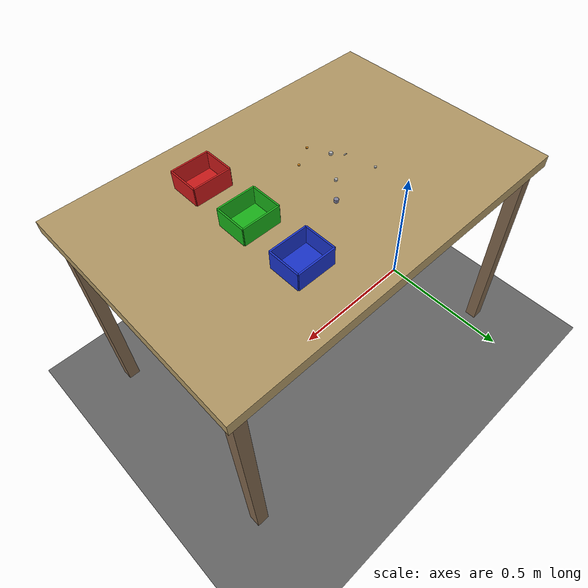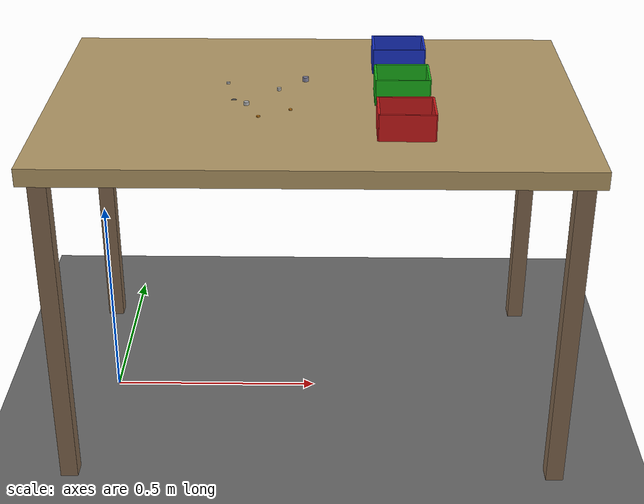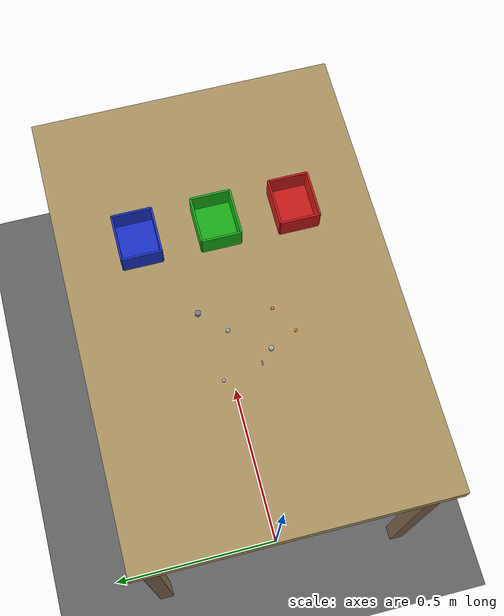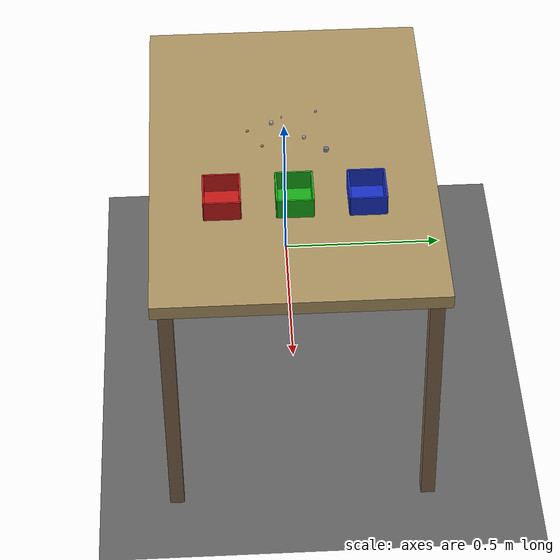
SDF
<?xml version="1.0"?>
<sdf version="1.7">
  <world name="vla_world">

    <!-- ── Physics ────────────────────────────────────────────────────── -->
    <physics name="default_physics" default="0" type="ode">
      <max_step_size>0.001</max_step_size>
      <real_time_factor>1</real_time_factor>
      <real_time_update_rate>1000</real_time_update_rate>
    </physics>

    <!-- ── Plugins ─────────────────────────────────────────────────────── -->
    <plugin filename="libgazebo_ros_factory.so" name="gazebo_ros_factory"/>

    <!-- ── Lighting ────────────────────────────────────────────────────── -->
    <light name="sun" type="directional">
      <cast_shadows>1</cast_shadows>
      <pose>0 0 10 0 -0 0</pose>
      <diffuse>0.8 0.8 0.8 1</diffuse>
      <specular>0.2 0.2 0.2 1</specular>
      <direction>-0.5 0.1 -0.9</direction>
    </light>

    <light name="overhead" type="point">
      <pose>0.4 0 1.5 0 0 0</pose>
      <diffuse>0.6 0.6 0.6 1</diffuse>
      <specular>0.1 0.1 0.1 1</specular>
      <attenuation>
        <range>5</range>
        <linear>0.2</linear>
      </attenuation>
    </light>

    <!-- ── Ground plane ────────────────────────────────────────────────── -->
    <model name="ground_plane">
      <static>true</static>
      <link name="link">
        <collision name="collision">
          <geometry><plane><normal>0 0 1</normal></plane></geometry>
        </collision>
        <visual name="visual">
          <geometry><plane><normal>0 0 1</normal><size>20 20</size></plane></geometry>
          <material>
            <ambient>0.4 0.4 0.4 1</ambient>
            <diffuse>0.4 0.4 0.4 1</diffuse>
          </material>
        </visual>
      </link>
    </model>

    <!-- ── Workbench ────────────────────────────────────────────────────── -->
    <!-- Table surface at z=0.77 (Franka Panda mounted on top) -->
    <model name="workbench">
      <static>true</static>
      <pose>0.5 0 0 0 0 0</pose>
      <link name="table_top">
        <pose>0 0 0.77 0 0 0</pose>
        <collision name="collision">
          <geometry>
            <box><size>1.2 0.8 0.04</size></box>
          </geometry>
        </collision>
        <visual name="visual">
          <geometry>
            <box><size>1.2 0.8 0.04</size></box>
          </geometry>
          <material>
            <ambient>0.7 0.6 0.4 1</ambient>
            <diffuse>0.7 0.6 0.4 1</diffuse>
          </material>
        </visual>
      </link>
      <!-- Table legs (4×) -->
      <link name="leg_fl"><pose>-0.56 -0.36 0.385 0 0 0</pose>
        <collision name="c"><geometry><box><size>0.04 0.04 0.77</size></box></geometry></collision>
        <visual name="v"><geometry><box><size>0.04 0.04 0.77</size></box></geometry>
          <material><ambient>0.5 0.4 0.3 1</ambient><diffuse>0.5 0.4 0.3 1</diffuse></material>
        </visual>
      </link>
      <link name="leg_fr"><pose>-0.56  0.36 0.385 0 0 0</pose>
        <collision name="c"><geometry><box><size>0.04 0.04 0.77</size></box></geometry></collision>
        <visual name="v"><geometry><box><size>0.04 0.04 0.77</size></box></geometry>
          <material><ambient>0.5 0.4 0.3 1</ambient><diffuse>0.5 0.4 0.3 1</diffuse></material>
        </visual>
      </link>
      <link name="leg_bl"><pose> 0.56 -0.36 0.385 0 0 0</pose>
        <collision name="c"><geometry><box><size>0.04 0.04 0.77</size></box></geometry></collision>
        <visual name="v"><geometry><box><size>0.04 0.04 0.77</size></box></geometry>
          <material><ambient>0.5 0.4 0.3 1</ambient><diffuse>0.5 0.4 0.3 1</diffuse></material>
        </visual>
      </link>
      <link name="leg_br"><pose> 0.56  0.36 0.385 0 0 0</pose>
        <collision name="c"><geometry><box><size>0.04 0.04 0.77</size></box></geometry></collision>
        <visual name="v"><geometry><box><size>0.04 0.04 0.77</size></box></geometry>
          <material><ambient>0.5 0.4 0.3 1</ambient><diffuse>0.5 0.4 0.3 1</diffuse></material>
        </visual>
      </link>
    </model>

    <!-- ── Sorting Bin A (red) ─────────────────────────────────────────── -->
    <model name="bin_A">
      <static>true</static>
      <pose>0.70 -0.20 0.79 0 0 0</pose>
      <link name="base">
        <collision name="c"><geometry><box><size>0.12 0.10 0.005</size></box></geometry></collision>
        <visual name="v"><geometry><box><size>0.12 0.10 0.005</size></box></geometry>
          <material><ambient>0.8 0.1 0.1 1</ambient><diffuse>0.8 0.1 0.1 1</diffuse></material>
        </visual>
      </link>
      <link name="wall_front"><pose>0 -0.05 0.03 0 0 0</pose>
        <collision name="c"><geometry><box><size>0.12 0.005 0.06</size></box></geometry></collision>
        <visual name="v"><geometry><box><size>0.12 0.005 0.06</size></box></geometry>
          <material><ambient>0.8 0.1 0.1 1</ambient><diffuse>0.8 0.1 0.1 1</diffuse></material>
        </visual>
      </link>
      <link name="wall_back"><pose>0  0.05 0.03 0 0 0</pose>
        <collision name="c"><geometry><box><size>0.12 0.005 0.06</size></box></geometry></collision>
        <visual name="v"><geometry><box><size>0.12 0.005 0.06</size></box></geometry>
          <material><ambient>0.8 0.1 0.1 1</ambient><diffuse>0.8 0.1 0.1 1</diffuse></material>
        </visual>
      </link>
      <link name="wall_left"><pose>-0.06 0 0.03 0 0 0</pose>
        <collision name="c"><geometry><box><size>0.005 0.10 0.06</size></box></geometry></collision>
        <visual name="v"><geometry><box><size>0.005 0.10 0.06</size></box></geometry>
          <material><ambient>0.8 0.1 0.1 1</ambient><diffuse>0.8 0.1 0.1 1</diffuse></material>
        </visual>
      </link>
      <link name="wall_right"><pose> 0.06 0 0.03 0 0 0</pose>
        <collision name="c"><geometry><box><size>0.005 0.10 0.06</size></box></geometry></collision>
        <visual name="v"><geometry><box><size>0.005 0.10 0.06</size></box></geometry>
          <material><ambient>0.8 0.1 0.1 1</ambient><diffuse>0.8 0.1 0.1 1</diffuse></material>
        </visual>
      </link>
    </model>

    <!-- ── Sorting Bin B (green) ──────────────────────────────────────── -->
    <model name="bin_B">
      <static>true</static>
      <pose>0.70 0.00 0.79 0 0 0</pose>
      <link name="base">
        <collision name="c"><geometry><box><size>0.12 0.10 0.005</size></box></geometry></collision>
        <visual name="v"><geometry><box><size>0.12 0.10 0.005</size></box></geometry>
          <material><ambient>0.1 0.7 0.1 1</ambient><diffuse>0.1 0.7 0.1 1</diffuse></material>
        </visual>
      </link>
      <link name="wall_front"><pose>0 -0.05 0.03 0 0 0</pose>
        <collision name="c"><geometry><box><size>0.12 0.005 0.06</size></box></geometry></collision>
        <visual name="v"><geometry><box><size>0.12 0.005 0.06</size></box></geometry>
          <material><ambient>0.1 0.7 0.1 1</ambient><diffuse>0.1 0.7 0.1 1</diffuse></material>
        </visual>
      </link>
      <link name="wall_back"><pose>0  0.05 0.03 0 0 0</pose>
        <collision name="c"><geometry><box><size>0.12 0.005 0.06</size></box></geometry></collision>
        <visual name="v"><geometry><box><size>0.12 0.005 0.06</size></box></geometry>
          <material><ambient>0.1 0.7 0.1 1</ambient><diffuse>0.1 0.7 0.1 1</diffuse></material>
        </visual>
      </link>
      <link name="wall_left"><pose>-0.06 0 0.03 0 0 0</pose>
        <collision name="c"><geometry><box><size>0.005 0.10 0.06</size></box></geometry></collision>
        <visual name="v"><geometry><box><size>0.005 0.10 0.06</size></box></geometry>
          <material><ambient>0.1 0.7 0.1 1</ambient><diffuse>0.1 0.7 0.1 1</diffuse></material>
        </visual>
      </link>
      <link name="wall_right"><pose> 0.06 0 0.03 0 0 0</pose>
        <collision name="c"><geometry><box><size>0.005 0.10 0.06</size></box></geometry></collision>
        <visual name="v"><geometry><box><size>0.005 0.10 0.06</size></box></geometry>
          <material><ambient>0.1 0.7 0.1 1</ambient><diffuse>0.1 0.7 0.1 1</diffuse></material>
        </visual>
      </link>
    </model>

    <!-- ── Sorting Bin C (blue) ───────────────────────────────────────── -->
    <model name="bin_C">
      <static>true</static>
      <pose>0.70 0.20 0.79 0 0 0</pose>
      <link name="base">
        <collision name="c"><geometry><box><size>0.12 0.10 0.005</size></box></geometry></collision>
        <visual name="v"><geometry><box><size>0.12 0.10 0.005</size></box></geometry>
          <material><ambient>0.1 0.2 0.8 1</ambient><diffuse>0.1 0.2 0.8 1</diffuse></material>
        </visual>
      </link>
      <link name="wall_front"><pose>0 -0.05 0.03 0 0 0</pose>
        <collision name="c"><geometry><box><size>0.12 0.005 0.06</size></box></geometry></collision>
        <visual name="v"><geometry><box><size>0.12 0.005 0.06</size></box></geometry>
          <material><ambient>0.1 0.2 0.8 1</ambient><diffuse>0.1 0.2 0.8 1</diffuse></material>
        </visual>
      </link>
      <link name="wall_back"><pose>0  0.05 0.03 0 0 0</pose>
        <collision name="c"><geometry><box><size>0.12 0.005 0.06</size></box></geometry></collision>
        <visual name="v"><geometry><box><size>0.12 0.005 0.06</size></box></geometry>
          <material><ambient>0.1 0.2 0.8 1</ambient><diffuse>0.1 0.2 0.8 1</diffuse></material>
        </visual>
      </link>
      <link name="wall_left"><pose>-0.06 0 0.03 0 0 0</pose>
        <collision name="c"><geometry><box><size>0.005 0.10 0.06</size></box></geometry></collision>
        <visual name="v"><geometry><box><size>0.005 0.10 0.06</size></box></geometry>
          <material><ambient>0.1 0.2 0.8 1</ambient><diffuse>0.1 0.2 0.8 1</diffuse></material>
        </visual>
      </link>
      <link name="wall_right"><pose> 0.06 0 0.03 0 0 0</pose>
        <collision name="c"><geometry><box><size>0.005 0.10 0.06</size></box></geometry></collision>
        <visual name="v"><geometry><box><size>0.005 0.10 0.06</size></box></geometry>
          <material><ambient>0.1 0.2 0.8 1</ambient><diffuse>0.1 0.2 0.8 1</diffuse></material>
        </visual>
      </link>
    </model>

    <!-- Screw 1 (large) -->
    <model name="screw_1">
      <pose>0.35 -0.05 0.785 0 0 0</pose>
      <link name="link">
        <collision name="c"><geometry><cylinder><radius>0.006</radius><length>0.025</length></cylinder></geometry></collision>
        <visual name="v">
          <geometry><cylinder><radius>0.006</radius><length>0.025</length></cylinder></geometry>
          <material><ambient>0.6 0.6 0.6 1</ambient><diffuse>0.7 0.7 0.7 1</diffuse></material>
        </visual>
        <inertial><mass>0.010</mass></inertial>
      </link>
    </model>

    <!-- Screw 2 (small) -->
    <model name="screw_2">
      <pose>0.30 0.08 0.785 0 0 0.3</pose>
      <link name="link">
        <collision name="c"><geometry><cylinder><radius>0.004</radius><length>0.018</length></cylinder></geometry></collision>
        <visual name="v">
          <geometry><cylinder><radius>0.004</radius><length>0.018</length></cylinder></geometry>
          <material><ambient>0.6 0.6 0.6 1</ambient><diffuse>0.7 0.7 0.7 1</diffuse></material>
        </visual>
        <inertial><mass>0.006</mass></inertial>
      </link>
    </model>

    <!-- Screw 3 (medium) -->
    <model name="screw_3">
      <pose>0.42 0.04 0.785 0 0 -0.5</pose>
      <link name="link">
        <collision name="c"><geometry><cylinder><radius>0.005</radius><length>0.022</length></cylinder></geometry></collision>
        <visual name="v">
          <geometry><cylinder><radius>0.005</radius><length>0.022</length></cylinder></geometry>
          <material><ambient>0.6 0.6 0.6 1</ambient><diffuse>0.7 0.7 0.7 1</diffuse></material>
        </visual>
        <inertial><mass>0.008</mass></inertial>
      </link>
    </model>

    <!-- Rivet 1 -->
    <model name="rivet_1">
      <pose>0.38 -0.12 0.785 0 0 0</pose>
      <link name="link">
        <collision name="c"><geometry><cylinder><radius>0.004</radius><length>0.015</length></cylinder></geometry></collision>
        <visual name="v">
          <geometry><cylinder><radius>0.004</radius><length>0.015</length></cylinder></geometry>
          <material><ambient>0.8 0.5 0.1 1</ambient><diffuse>0.8 0.5 0.1 1</diffuse></material>
        </visual>
        <inertial><mass>0.004</mass></inertial>
      </link>
    </model>

    <!-- Rivet 2 -->
    <model name="rivet_2">
      <pose>0.45 -0.08 0.785 0 0 0.8</pose>
      <link name="link">
        <collision name="c"><geometry><cylinder><radius>0.004</radius><length>0.015</length></cylinder></geometry></collision>
        <visual name="v">
          <geometry><cylinder><radius>0.004</radius><length>0.015</length></cylinder></geometry>
          <material><ambient>0.8 0.5 0.1 1</ambient><diffuse>0.8 0.5 0.1 1</diffuse></material>
        </visual>
        <inertial><mass>0.004</mass></inertial>
      </link>
    </model>

    <!-- Washer -->
    <model name="washer_1">
      <pose>0.32 -0.02 0.782 1.5707 0 0</pose>
      <link name="link">
        <collision name="c"><geometry><cylinder><radius>0.010</radius><length>0.003</length></cylinder></geometry></collision>
        <visual name="v">
          <geometry><cylinder><radius>0.010</radius><length>0.003</length></cylinder></geometry>
          <material><ambient>0.5 0.5 0.5 1</ambient><diffuse>0.6 0.6 0.6 1</diffuse></material>
        </visual>
        <inertial><mass>0.008</mass></inertial>
      </link>
    </model>

    <!-- Bolt -->
    <model name="bolt_1">
      <pose>0.48 0.10 0.785 0 0 0</pose>
      <link name="link">
        <collision name="c"><geometry><cylinder><radius>0.007</radius><length>0.030</length></cylinder></geometry></collision>
        <visual name="v">
          <geometry><cylinder><radius>0.007</radius><length>0.030</length></cylinder></geometry>
          <material><ambient>0.4 0.4 0.5 1</ambient><diffuse>0.5 0.5 0.6 1</diffuse></material>
        </visual>
        <inertial><mass>0.018</mass></inertial>
      </link>
    </model>

  </world>
</sdf>
